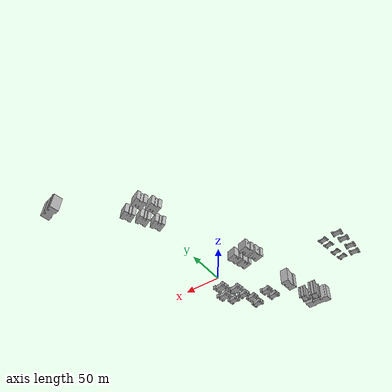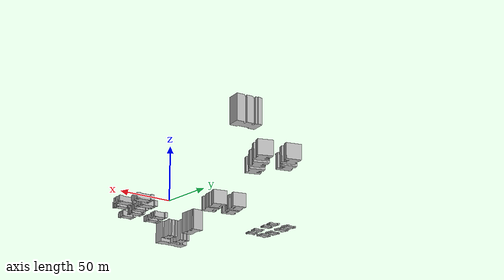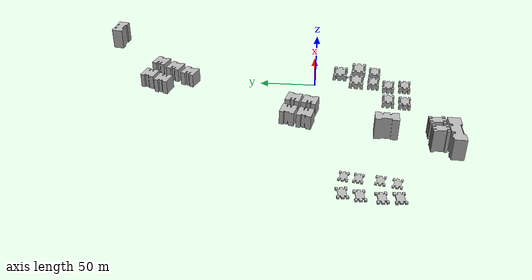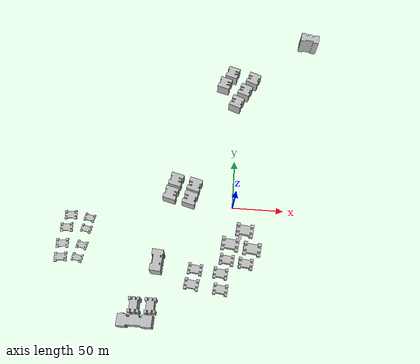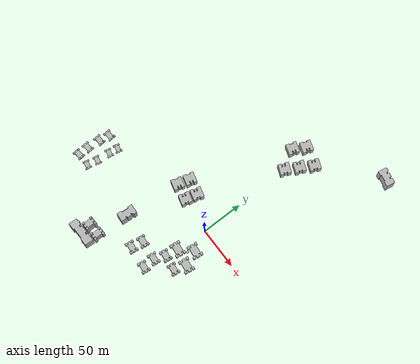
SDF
<?xml version="1.0"?>
<sdf version="1.6">
   <model name="iitj">
      <static>true</static>
      <link name='link'>
	  <collision name="collision">
	    <geometry>
	      <mesh>
	        <scale>1 1 1</scale>
	        <uri>model://iitj/meshes/iitj2.stl</uri>
	      </mesh>
	       <surface>
	         <friction>
	           <ode>
	              <mu>1.2</mu>
	              <mu2>1.2</mu2>
	           </ode>
	          </friction>
	         </surface>
	       </geometry>
	      </collision>
	      <visual name="visual">
	      	<geometry>
	          <mesh>
	            <scale>1 1 1</scale>
	            <uri>model://iitj/meshes/iitj2.dae</uri>
	          </mesh>
	        </geometry>
	      </visual>
	     </link>
	    </model>
	   </sdf>
